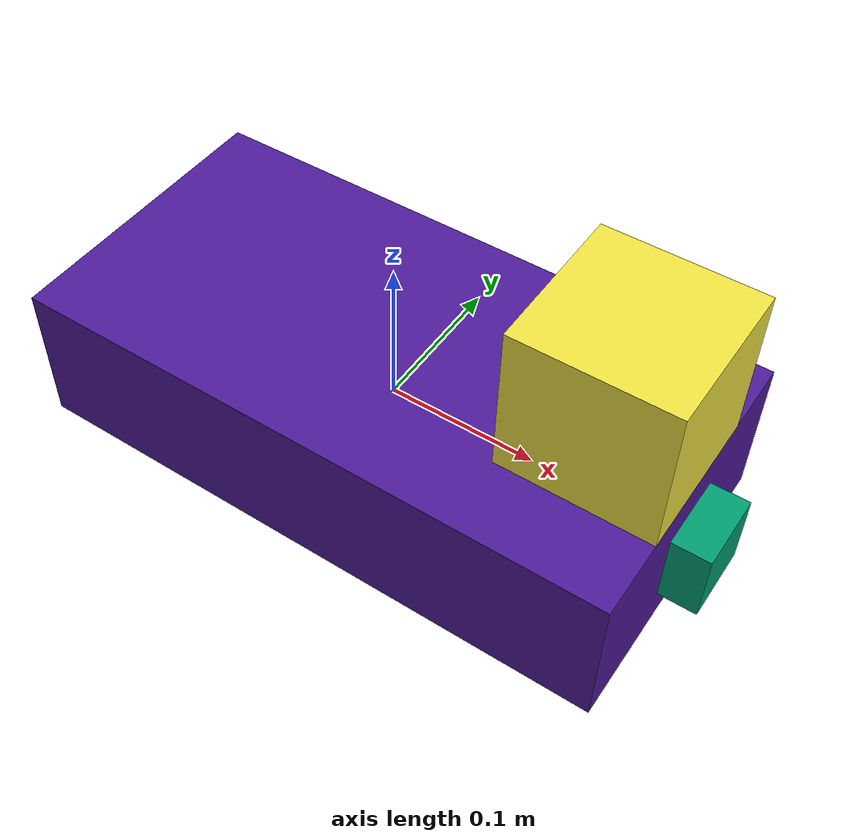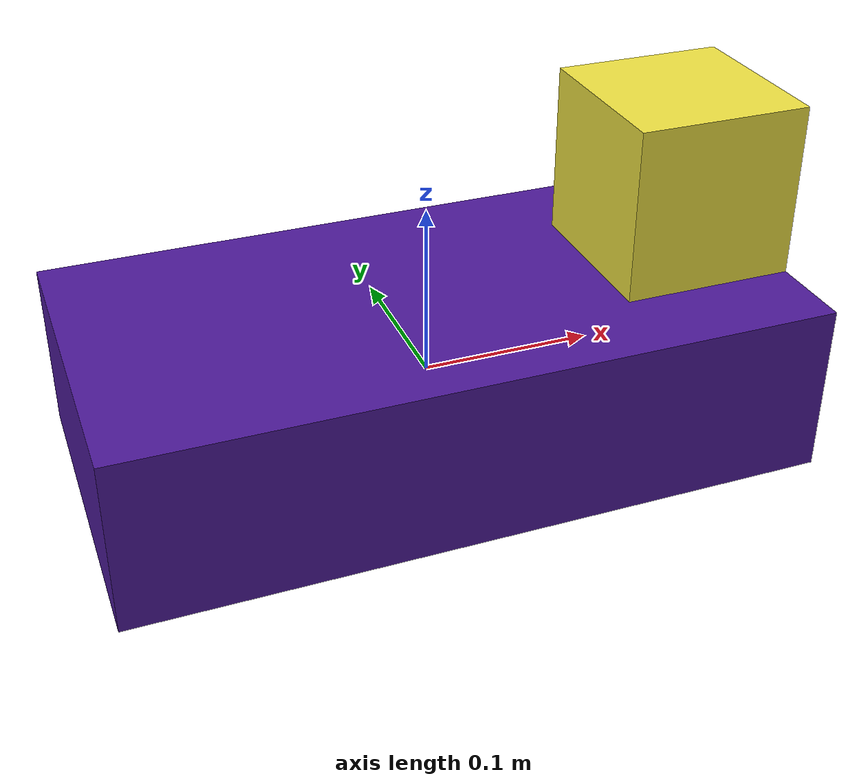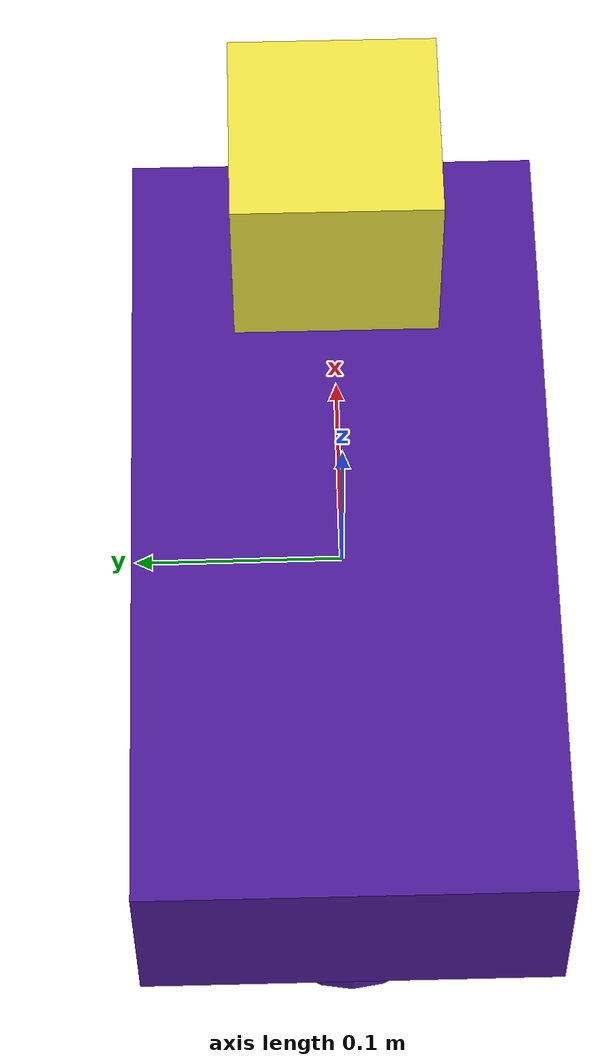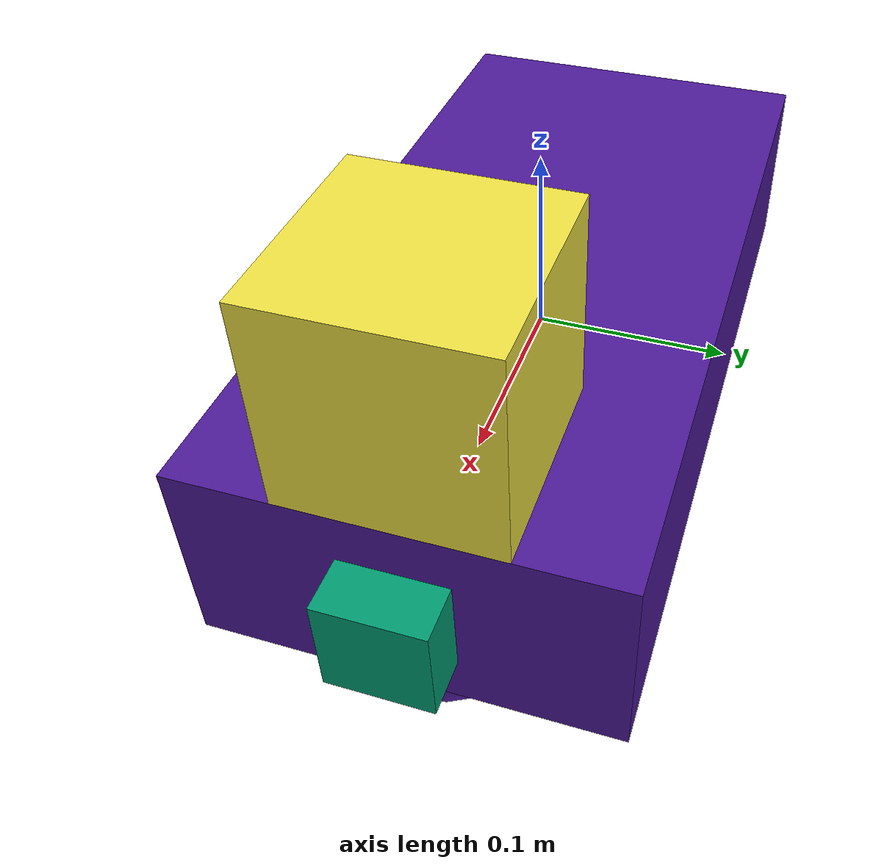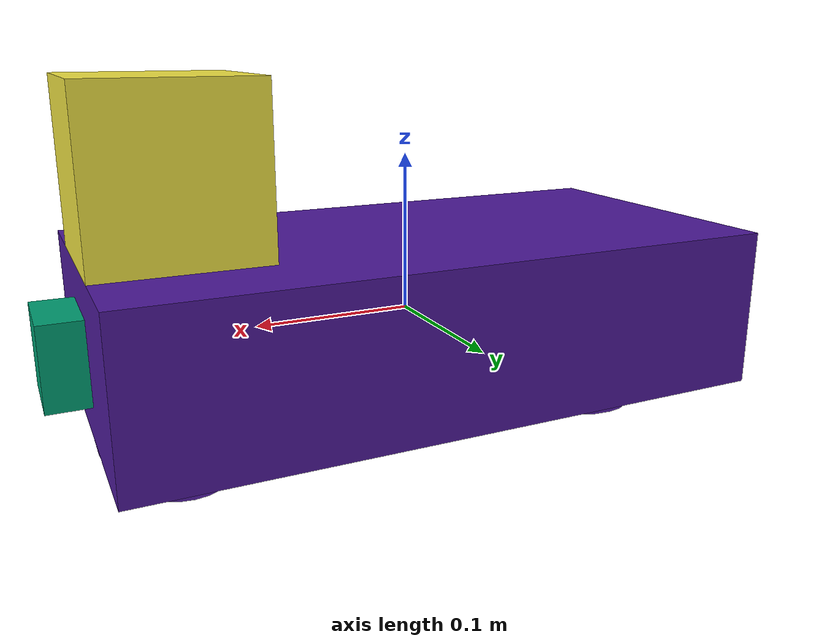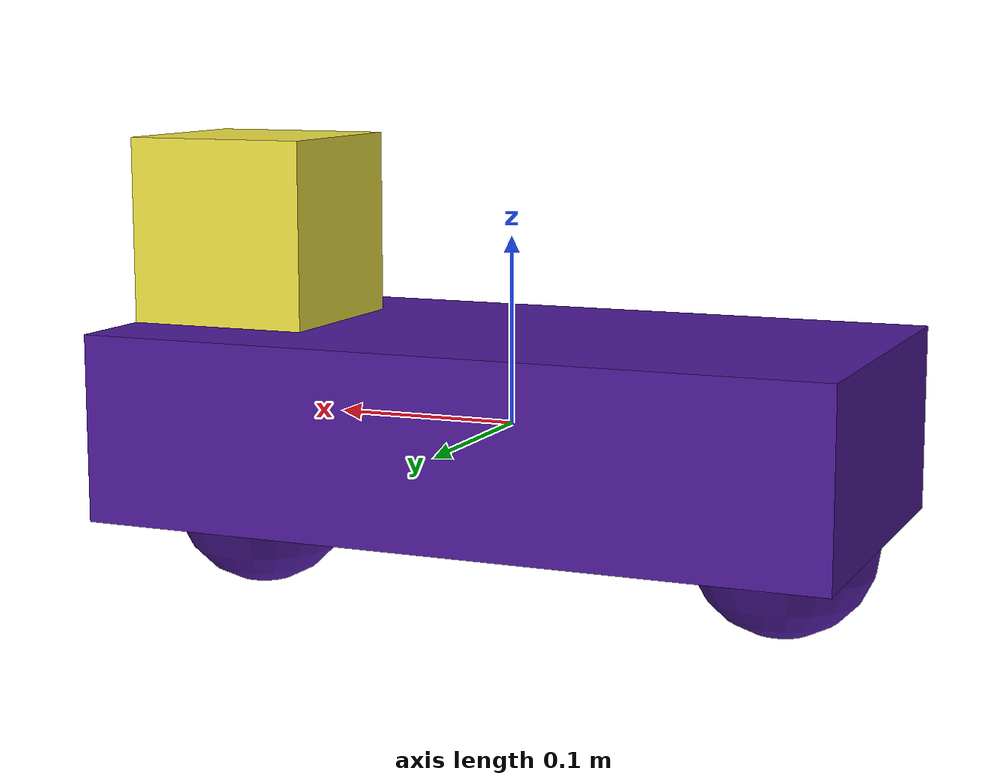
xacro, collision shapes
<?xml version='1.0'?>

<robot name="my_robot" xmlns:xacro="http://www.ros.org/wiki/xacro">

  <xacro:include filename="$(find my_robot)/urdf/my_robot.gazebo" />

  <link name="robot_footprint"></link>

  <joint name="robot_footprint_joint" type="fixed">
    <origin xyz="0 0 0" rpy="0 0 0" />
    <parent link="robot_footprint"/>
    <child link="chassis" />
  </joint>

  <link name='chassis'>
    <pose>0 0 0.1 0 0 0</pose>

    <inertial>
      <mass value="15.0"/>
      <origin xyz="0.0 0 0" rpy=" 0 0 0"/>
      <inertia
          ixx="0.1" ixy="0" ixz="0"
          iyy="0.1" iyz="0"
          izz="0.1"
      />
    </inertial>

    <collision name='collision'>
      <origin xyz="0 0 0" rpy=" 0 0 0"/>
      <geometry>
        <box size=".4 .2 .1"/>
      </geometry>
    </collision>

    <visual name='chassis_visual'>
      <origin xyz="0 0 0" rpy=" 0 0 0"/>
      <geometry>
        <box size=".4 .2 .1"/>
      </geometry>
    </visual>

    <collision name='back_caster_collision'>
      <origin xyz="-0.15 0 -0.05" rpy=" 0 0 0"/>
      <geometry>
        <sphere radius="0.0499"/>
      </geometry>
    </collision>

    <visual name='back_caster_visual'>
      <origin xyz="-0.15 0 -0.05" rpy=" 0 0 0"/>
      <geometry>
        <sphere radius="0.05"/>
      </geometry>
    </visual>

    <collision name='front_caster_collision'>
      <origin xyz="0.15 0 -0.05" rpy=" 0 0 0"/>
      <geometry>
        <sphere radius="0.0499"/>
      </geometry>
    </collision>

    <visual name='front_caster_visual'>
      <origin xyz="0.15 0 -0.05" rpy=" 0 0 0"/>
      <geometry>
        <sphere radius="0.05"/>
      </geometry>
    </visual>

  </link>

  <link name="camera">
    <inertial>
      <mass value="0.1"/>
      <origin xyz="0 0 0" rpy=" 0 0 0"/>
      <inertia
          ixx="1e-6" ixy="0" ixz="0"
          iyy="1e-6" iyz="0" izz="1e-6"
      />
    </inertial>

    <collision name='camera_collision'>
      <origin xyz="0 0 0" rpy=" 0 0 0"/>
      <geometry>
        <box size="0.05 0.05 0.05"/>
      </geometry>
    </collision>

    <visual name='camera_visual'>
      <origin xyz="0 0 0" rpy=" 0 0 0"/>
      <geometry>
        <box size="0.05 0.05 0.05"/>
      </geometry>
    </visual>
  </link>

  <joint name="camera_joint" type="fixed">
    <axis xyz="0 1 0"/>
    <origin xyz="0.2 0 0" rpy="0 0 0"/>
    <parent link="chassis"/>
    <child link="camera" />
  </joint>

  <link name="hokuyo">
    <inertial>
      <mass value="1e-5"/>
      <origin xyz="0 0 0" rpy=" 0 0 0"/>
      <inertia
          ixx="1e-6" ixy="0" ixz="0"
          iyy="1e-6" iyz="0" izz="1e-6"
      />
    </inertial>

    <collision name='hokuyo_collision'>
      <origin xyz="0 0 0" rpy=" 0 0 0"/>
      <geometry>
        <box size="0.1 0.1 0.1"/>
      </geometry>
    </collision>

    <visual name='hokuyo_visual'>
      <geometry>
        <mesh filename="package://my_robot/meshes/hokuyo.dae"/>
      </geometry>
    </visual>
  </link>

  <joint name="hokuyo_joint" type="fixed">
    <axis xyz="0 1 0"/>
    <origin xyz="0.15 0 0.1" rpy="0 0 0"/>
    <parent link="chassis"/>
    <child link="hokuyo" />
  </joint>

</robot>
